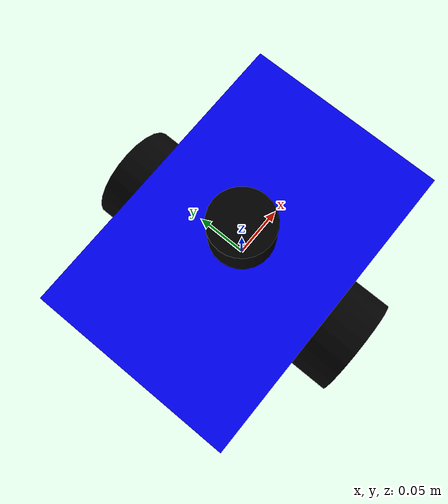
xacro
<?xml version="1.0"?>
<robot xmlns:xacro="https://www.ros.org/wiki/xacro" name="mobile_robot">
    <link name="base_link">
        <visual>
            <geometry>
                <box size="0.30 0.20 0.10" />
            </geometry>
            <material name="blue">
                <color rgba="0 0 1 1" />
            </material>
        </visual>
        <collision>
            <geometry>
                <box size="0.30 0.20 0.10" />
            </geometry>
        </collision>
        <inertial>
            <mass value="2.0" />
            <origin xyz="0 0 0" />
            <inertia
                ixx="0.01"
                ixy="0"
                ixz="0"
                iyy="0.01"
                iyz="0"
                izz="0.02" />
        </inertial>
    </link>
    <link name="left_wheel">
        <visual>
            <geometry>
                <cylinder radius="0.05" length="0.04" />
            </geometry>
            <material name="black">
                <color rgba="0 0 0 1" />
            </material>
            <origin xyz="0 0 0" rpy="1.5708 0 0" />
        </visual>
        <collision>
            <geometry>
                <cylinder radius="0.05" length="0.04" />
            </geometry>
            <origin xyz="0 0 0" rpy="1.5708 0 0" />
        </collision>
        <inertial>
            <mass value="0.2" />
            <origin xyz="0 0 0" />
            <inertia
                ixx="0.0002"
                ixy="0"
                ixz="0"
                iyy="0.0002"
                iyz="0"
                izz="0.0001" />
        </inertial>
    </link>
    <link name="right_wheel">
        <visual>
            <geometry>
                <cylinder radius="0.05" length="0.04" />
            </geometry>
            <material name="black">
                <color rgba="0 0 0 1" />
            </material>
            <origin xyz="0 0 0" rpy="1.5708 0 0" />
        </visual>
        <collision>
            <geometry>
                <cylinder radius="0.05" length="0.04" />
            </geometry>
            <origin xyz="0 0 0" rpy="1.5708 0 0" />
        </collision>
        <inertial>
            <mass value="0.2" />
            <origin xyz="0 0 0" />
            <inertia
                ixx="0.0002"
                ixy="0"
                ixz="0"
                iyy="0.0002"
                iyz="0"
                izz="0.0001" />
        </inertial>
    </link>
    <joint name="lidar_joint" type="fixed">
        <parent link="base_link" />
        <child link="lidar_link" />
        <origin xyz="0 0 0.08" rpy="0 0 0" />
    </joint>
    <link name="lidar_link">
        <visual>
            <origin xyz="0 0 0" />
            <geometry>
                <cylinder radius="0.03" length="0.04" />
            </geometry>
            <material name="black" />
        </visual>
        <collision>
            <origin xyz="0 0 0" />
            <geometry>
                <cylinder radius="0.03" length="0.04" />
            </geometry>
        </collision>
        <inertial>
            <mass value="0.1" />
            <origin xyz="0 0 0" />
            <inertia
                ixx="0.0001"
                ixy="0"
                ixz="0"
                iyy="0.0001"
                iyz="0"
                izz="0.0001" />
        </inertial>
    </link>
    <joint name="left_wheel_joint" type="continuous">
        <parent link="base_link" />
        <child link="left_wheel" />
        <origin xyz="0 -0.12 -0.025" rpy="0 0 0" />
        <axis xyz="0 1 0" />
    </joint>
    <joint name="right_wheel_joint" type="continuous">
        <parent link="base_link" />
        <child link="right_wheel" />
        <origin xyz="0 0.12 -0.025" rpy="0 0 0" />
        <axis xyz="0 1 0" />
    </joint>
</robot>
